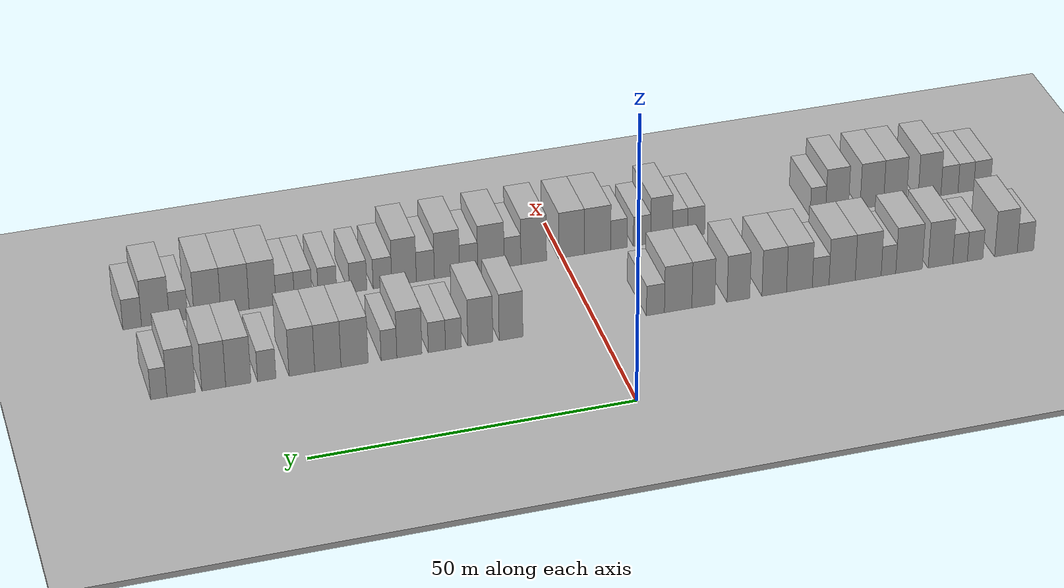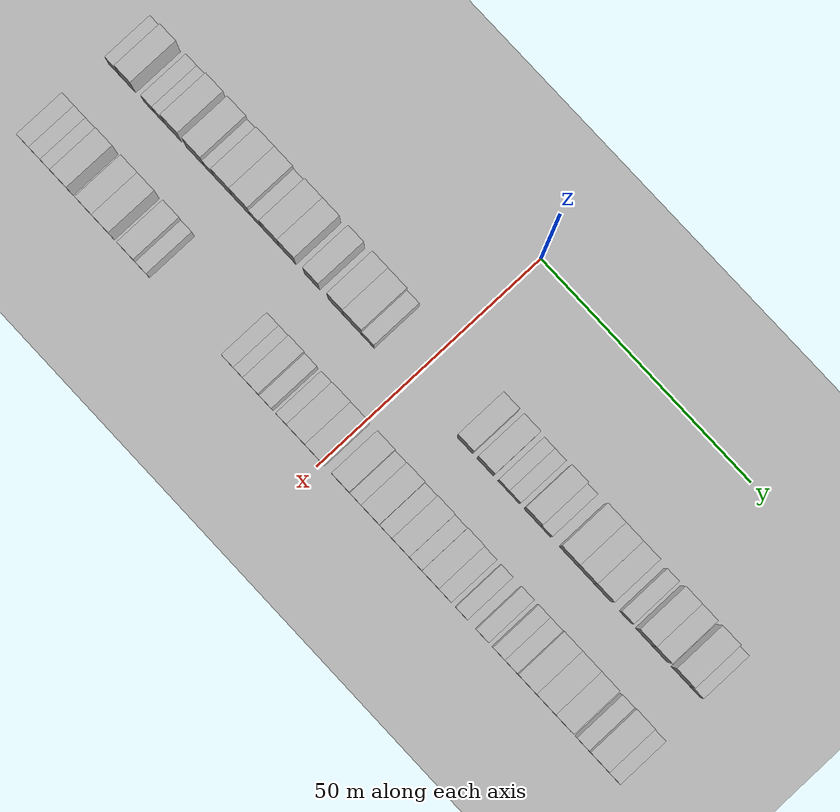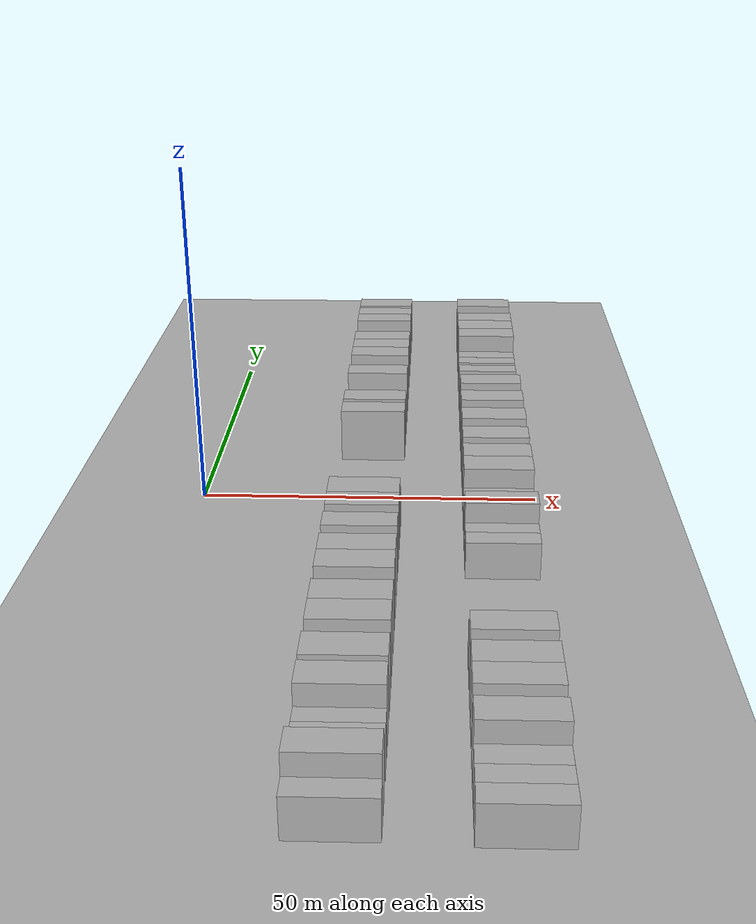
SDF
<sdf version="1.6">
 <world name="default">
  <include><name>ground_plane_1</name><uri>model://HANNAS_ground_plane</uri></include>
  <include>
   <name>ground_plane_2</name>
   <uri>model://HANNAS_ground_plane</uri>
   <pose>100 0 0  0 0 0</pose>
  </include>
  <model name="building_31">
   <static>1</static>
   <pose>25.0000 -70.6167 0 0.000000 0.000000 0.000000</pose>
   <link name="link">
    <pose>0 0 3.00 0 0 0</pose>
    <collision name="collision"><geometry><box><size>10.0000 2.8060 6.0000</size></box></geometry></collision>
    <visual name="visual">
     <cast_shadows>0</cast_shadows>
     <geometry><box><size>10.0000 2.8060 6.0000</size></box></geometry>
     <material>
      <script>
       <uri>model://HANNAS_wall/materials/scripts</uri>
       <uri>model://HANNAS_wall/materials/textures</uri>
       <name>vrc/HANNAS_wall</name>
      </script>
     </material>
    </visual>
   </link>
  </model>
  <model name="building_32">
   <static>1</static>
   <pose>25.0000 -67.3037 0 0.000000 0.000000 0.000000</pose>
   <link name="link">
    <pose>0 0 4.50 0 0 0</pose>
    <collision name="collision"><geometry><box><size>10.0000 3.8201 9.0000</size></box></geometry></collision>
    <visual name="visual">
     <cast_shadows>0</cast_shadows>
     <geometry><box><size>10.0000 3.8201 9.0000</size></box></geometry>
     <material>
      <script>
       <uri>model://HANNAS_wall/materials/scripts</uri>
       <uri>model://HANNAS_wall/materials/textures</uri>
       <name>vrc/HANNAS_wall</name>
      </script>
     </material>
    </visual>
   </link>
  </model>
  <model name="building_33">
   <static>1</static>
   <pose>25.0000 -62.0734 0 0.000000 0.000000 0.000000</pose>
   <link name="link">
    <pose>0 0 3.00 0 0 0</pose>
    <collision name="collision"><geometry><box><size>10.0000 2.6405 6.0000</size></box></geometry></collision>
    <visual name="visual">
     <cast_shadows>0</cast_shadows>
     <geometry><box><size>10.0000 2.6405 6.0000</size></box></geometry>
     <material>
      <script>
       <uri>model://HANNAS_wall/materials/scripts</uri>
       <uri>model://HANNAS_wall/materials/textures</uri>
       <name>vrc/HANNAS_wall</name>
      </script>
     </material>
    </visual>
   </link>
  </model>
  <model name="building_34">
   <static>1</static>
   <pose>25.0000 -59.5268 0 0.000000 0.000000 0.000000</pose>
   <link name="link">
    <pose>0 0 3.00 0 0 0</pose>
    <collision name="collision"><geometry><box><size>10.0000 2.4527 6.0000</size></box></geometry></collision>
    <visual name="visual">
     <cast_shadows>0</cast_shadows>
     <geometry><box><size>10.0000 2.4527 6.0000</size></box></geometry>
     <material>
      <script>
       <uri>model://HANNAS_wall/materials/scripts</uri>
       <uri>model://HANNAS_wall/materials/textures</uri>
       <name>vrc/HANNAS_wall</name>
      </script>
     </material>
    </visual>
   </link>
  </model>
  <model name="building_35">
   <static>1</static>
   <pose>25.0000 -56.2302 0 0.000000 0.000000 0.000000</pose>
   <link name="link">
    <pose>0 0 4.50 0 0 0</pose>
    <collision name="collision"><geometry><box><size>10.0000 4.1403 9.0000</size></box></geometry></collision>
    <visual name="visual">
     <cast_shadows>0</cast_shadows>
     <geometry><box><size>10.0000 4.1403 9.0000</size></box></geometry>
     <material>
      <script>
       <uri>model://HANNAS_wall/materials/scripts</uri>
       <uri>model://HANNAS_wall/materials/textures</uri>
       <name>vrc/HANNAS_wall</name>
      </script>
     </material>
    </visual>
   </link>
  </model>
  <model name="building_36">
   <static>1</static>
   <pose>25.0000 -50.9407 0 0.000000 0.000000 0.000000</pose>
   <link name="link">
    <pose>0 0 4.50 0 0 0</pose>
    <collision name="collision"><geometry><box><size>10.0000 4.4387 9.0000</size></box></geometry></collision>
    <visual name="visual">
     <cast_shadows>0</cast_shadows>
     <geometry><box><size>10.0000 4.4387 9.0000</size></box></geometry>
     <material>
      <script>
       <uri>model://HANNAS_wall/materials/scripts</uri>
       <uri>model://HANNAS_wall/materials/textures</uri>
       <name>vrc/HANNAS_wall</name>
      </script>
     </material>
    </visual>
   </link>
  </model>
  <model name="building_37">
   <static>1</static>
   <pose>25.0000 -47.5016 0 0.000000 0.000000 0.000000</pose>
   <link name="link">
    <pose>0 0 3.00 0 0 0</pose>
    <collision name="collision"><geometry><box><size>10.0000 2.4396 6.0000</size></box></geometry></collision>
    <visual name="visual">
     <cast_shadows>0</cast_shadows>
     <geometry><box><size>10.0000 2.4396 6.0000</size></box></geometry>
     <material>
      <script>
       <uri>model://HANNAS_wall/materials/scripts</uri>
       <uri>model://HANNAS_wall/materials/textures</uri>
       <name>vrc/HANNAS_wall</name>
      </script>
     </material>
    </visual>
   </link>
  </model>
  <model name="building_38">
   <static>1</static>
   <pose>25.0000 -44.1194 0 0.000000 0.000000 0.000000</pose>
   <link name="link">
    <pose>0 0 4.50 0 0 0</pose>
    <collision name="collision"><geometry><box><size>10.0000 4.3247 9.0000</size></box></geometry></collision>
    <visual name="visual">
     <cast_shadows>0</cast_shadows>
     <geometry><box><size>10.0000 4.3247 9.0000</size></box></geometry>
     <material>
      <script>
       <uri>model://HANNAS_wall/materials/scripts</uri>
       <uri>model://HANNAS_wall/materials/textures</uri>
       <name>vrc/HANNAS_wall</name>
      </script>
     </material>
    </visual>
   </link>
  </model>
  <model name="building_39">
   <static>1</static>
   <pose>25.0000 -39.7856 0 0.000000 0.000000 0.000000</pose>
   <link name="link">
    <pose>0 0 4.50 0 0 0</pose>
    <collision name="collision"><geometry><box><size>10.0000 4.3429 9.0000</size></box></geometry></collision>
    <visual name="visual">
     <cast_shadows>0</cast_shadows>
     <geometry><box><size>10.0000 4.3429 9.0000</size></box></geometry>
     <material>
      <script>
       <uri>model://HANNAS_wall/materials/scripts</uri>
       <uri>model://HANNAS_wall/materials/textures</uri>
       <name>vrc/HANNAS_wall</name>
      </script>
     </material>
    </visual>
   </link>
  </model>
  <model name="building_40">
   <static>1</static>
   <pose>25.0000 -36.2304 0 0.000000 0.000000 0.000000</pose>
   <link name="link">
    <pose>0 0 3.00 0 0 0</pose>
    <collision name="collision"><geometry><box><size>10.0000 2.7675 6.0000</size></box></geometry></collision>
    <visual name="visual">
     <cast_shadows>0</cast_shadows>
     <geometry><box><size>10.0000 2.7675 6.0000</size></box></geometry>
     <material>
      <script>
       <uri>model://HANNAS_wall/materials/scripts</uri>
       <uri>model://HANNAS_wall/materials/textures</uri>
       <name>vrc/HANNAS_wall</name>
      </script>
     </material>
    </visual>
   </link>
  </model>
  <model name="building_41">
   <static>1</static>
   <pose>25.0000 -32.7204 0 0.000000 0.000000 0.000000</pose>
   <link name="link">
    <pose>0 0 4.50 0 0 0</pose>
    <collision name="collision"><geometry><box><size>10.0000 4.2525 9.0000</size></box></geometry></collision>
    <visual name="visual">
     <cast_shadows>0</cast_shadows>
     <geometry><box><size>10.0000 4.2525 9.0000</size></box></geometry>
     <material>
      <script>
       <uri>model://HANNAS_wall/materials/scripts</uri>
       <uri>model://HANNAS_wall/materials/textures</uri>
       <name>vrc/HANNAS_wall</name>
      </script>
     </material>
    </visual>
   </link>
  </model>
  <model name="building_42">
   <static>1</static>
   <pose>25.0000 -28.5766 0 0.000000 0.000000 0.000000</pose>
   <link name="link">
    <pose>0 0 4.50 0 0 0</pose>
    <collision name="collision"><geometry><box><size>10.0000 4.0351 9.0000</size></box></geometry></collision>
    <visual name="visual">
     <cast_shadows>0</cast_shadows>
     <geometry><box><size>10.0000 4.0351 9.0000</size></box></geometry>
     <material>
      <script>
       <uri>model://HANNAS_wall/materials/scripts</uri>
       <uri>model://HANNAS_wall/materials/textures</uri>
       <name>vrc/HANNAS_wall</name>
      </script>
     </material>
    </visual>
   </link>
  </model>
  <model name="building_43">
   <static>1</static>
   <pose>25.0000 -22.7029 0 0.000000 0.000000 0.000000</pose>
   <link name="link">
    <pose>0 0 4.50 0 0 0</pose>
    <collision name="collision"><geometry><box><size>10.0000 3.7123 9.0000</size></box></geometry></collision>
    <visual name="visual">
     <cast_shadows>0</cast_shadows>
     <geometry><box><size>10.0000 3.7123 9.0000</size></box></geometry>
     <material>
      <script>
       <uri>model://HANNAS_wall/materials/scripts</uri>
       <uri>model://HANNAS_wall/materials/textures</uri>
       <name>vrc/HANNAS_wall</name>
      </script>
     </material>
    </visual>
   </link>
  </model>
  <model name="building_44">
   <static>1</static>
   <pose>25.0000 -16.9877 0 0.000000 0.000000 0.000000</pose>
   <link name="link">
    <pose>0 0 4.50 0 0 0</pose>
    <collision name="collision"><geometry><box><size>10.0000 3.7183 9.0000</size></box></geometry></collision>
    <visual name="visual">
     <cast_shadows>0</cast_shadows>
     <geometry><box><size>10.0000 3.7183 9.0000</size></box></geometry>
     <material>
      <script>
       <uri>model://HANNAS_wall/materials/scripts</uri>
       <uri>model://HANNAS_wall/materials/textures</uri>
       <name>vrc/HANNAS_wall</name>
      </script>
     </material>
    </visual>
   </link>
  </model>
  <model name="building_45">
   <static>1</static>
   <pose>25.0000 -12.9024 0 0.000000 0.000000 0.000000</pose>
   <link name="link">
    <pose>0 0 4.50 0 0 0</pose>
    <collision name="collision"><geometry><box><size>10.0000 4.4522 9.0000</size></box></geometry></collision>
    <visual name="visual">
     <cast_shadows>0</cast_shadows>
     <geometry><box><size>10.0000 4.4522 9.0000</size></box></geometry>
     <material>
      <script>
       <uri>model://HANNAS_wall/materials/scripts</uri>
       <uri>model://HANNAS_wall/materials/textures</uri>
       <name>vrc/HANNAS_wall</name>
      </script>
     </material>
    </visual>
   </link>
  </model>
  <model name="building_46">
   <static>1</static>
   <pose>25.0000 -9.2257 0 0.000000 0.000000 0.000000</pose>
   <link name="link">
    <pose>0 0 3.00 0 0 0</pose>
    <collision name="collision"><geometry><box><size>10.0000 2.9012 6.0000</size></box></geometry></collision>
    <visual name="visual">
     <cast_shadows>0</cast_shadows>
     <geometry><box><size>10.0000 2.9012 6.0000</size></box></geometry>
     <material>
      <script>
       <uri>model://HANNAS_wall/materials/scripts</uri>
       <uri>model://HANNAS_wall/materials/textures</uri>
       <name>vrc/HANNAS_wall</name>
      </script>
     </material>
    </visual>
   </link>
  </model>
  <model name="building_47">
   <static>1</static>
   <pose>25.0000 13.8577 0 0.000000 0.000000 0.000000</pose>
   <link name="link">
    <pose>0 0 4.50 0 0 0</pose>
    <collision name="collision"><geometry><box><size>10.0000 3.7552 9.0000</size></box></geometry></collision>
    <visual name="visual">
     <cast_shadows>0</cast_shadows>
     <geometry><box><size>10.0000 3.7552 9.0000</size></box></geometry>
     <material>
      <script>
       <uri>model://HANNAS_wall/materials/scripts</uri>
       <uri>model://HANNAS_wall/materials/textures</uri>
       <name>vrc/HANNAS_wall</name>
      </script>
     </material>
    </visual>
   </link>
  </model>
  <model name="building_48">
   <static>1</static>
   <pose>25.0000 18.7041 0 0.000000 0.000000 0.000000</pose>
   <link name="link">
    <pose>0 0 4.50 0 0 0</pose>
    <collision name="collision"><geometry><box><size>10.0000 3.9375 9.0000</size></box></geometry></collision>
    <visual name="visual">
     <cast_shadows>0</cast_shadows>
     <geometry><box><size>10.0000 3.9375 9.0000</size></box></geometry>
     <material>
      <script>
       <uri>model://HANNAS_wall/materials/scripts</uri>
       <uri>model://HANNAS_wall/materials/textures</uri>
       <name>vrc/HANNAS_wall</name>
      </script>
     </material>
    </visual>
   </link>
  </model>
  <model name="building_49">
   <static>1</static>
   <pose>25.0000 22.9272 0 0.000000 0.000000 0.000000</pose>
   <link name="link">
    <pose>0 0 3.00 0 0 0</pose>
    <collision name="collision"><geometry><box><size>10.0000 2.5087 6.0000</size></box></geometry></collision>
    <visual name="visual">
     <cast_shadows>0</cast_shadows>
     <geometry><box><size>10.0000 2.5087 6.0000</size></box></geometry>
     <material>
      <script>
       <uri>model://HANNAS_wall/materials/scripts</uri>
       <uri>model://HANNAS_wall/materials/textures</uri>
       <name>vrc/HANNAS_wall</name>
      </script>
     </material>
    </visual>
   </link>
  </model>
  <model name="building_50">
   <static>1</static>
   <pose>25.0000 25.5228 0 0.000000 0.000000 0.000000</pose>
   <link name="link">
    <pose>0 0 3.00 0 0 0</pose>
    <collision name="collision"><geometry><box><size>10.0000 2.6825 6.0000</size></box></geometry></collision>
    <visual name="visual">
     <cast_shadows>0</cast_shadows>
     <geometry><box><size>10.0000 2.6825 6.0000</size></box></geometry>
     <material>
      <script>
       <uri>model://HANNAS_wall/materials/scripts</uri>
       <uri>model://HANNAS_wall/materials/textures</uri>
       <name>vrc/HANNAS_wall</name>
      </script>
     </material>
    </visual>
   </link>
  </model>
  <model name="building_51">
   <static>1</static>
   <pose>25.0000 29.8135 0 0.000000 0.000000 0.000000</pose>
   <link name="link">
    <pose>0 0 4.50 0 0 0</pose>
    <collision name="collision"><geometry><box><size>10.0000 3.8990 9.0000</size></box></geometry></collision>
    <visual name="visual">
     <cast_shadows>0</cast_shadows>
     <geometry><box><size>10.0000 3.8990 9.0000</size></box></geometry>
     <material>
      <script>
       <uri>model://HANNAS_wall/materials/scripts</uri>
       <uri>model://HANNAS_wall/materials/textures</uri>
       <name>vrc/HANNAS_wall</name>
      </script>
     </material>
    </visual>
   </link>
  </model>
  <model name="building_52">
   <static>1</static>
   <pose>25.0000 32.9912 0 0.000000 0.000000 0.000000</pose>
   <link name="link">
    <pose>0 0 3.00 0 0 0</pose>
    <collision name="collision"><geometry><box><size>10.0000 2.4564 6.0000</size></box></geometry></collision>
    <visual name="visual">
     <cast_shadows>0</cast_shadows>
     <geometry><box><size>10.0000 2.4564 6.0000</size></box></geometry>
     <material>
      <script>
       <uri>model://HANNAS_wall/materials/scripts</uri>
       <uri>model://HANNAS_wall/materials/textures</uri>
       <name>vrc/HANNAS_wall</name>
      </script>
     </material>
    </visual>
   </link>
  </model>
  <model name="building_53">
   <static>1</static>
   <pose>25.0000 38.3238 0 0.000000 0.000000 0.000000</pose>
   <link name="link">
    <pose>0 0 4.50 0 0 0</pose>
    <collision name="collision"><geometry><box><size>10.0000 4.2088 9.0000</size></box></geometry></collision>
    <visual name="visual">
     <cast_shadows>0</cast_shadows>
     <geometry><box><size>10.0000 4.2088 9.0000</size></box></geometry>
     <material>
      <script>
       <uri>model://HANNAS_wall/materials/scripts</uri>
       <uri>model://HANNAS_wall/materials/textures</uri>
       <name>vrc/HANNAS_wall</name>
      </script>
     </material>
    </visual>
   </link>
  </model>
  <model name="building_54">
   <static>1</static>
   <pose>25.0000 42.4502 0 0.000000 0.000000 0.000000</pose>
   <link name="link">
    <pose>0 0 4.50 0 0 0</pose>
    <collision name="collision"><geometry><box><size>10.0000 4.0441 9.0000</size></box></geometry></collision>
    <visual name="visual">
     <cast_shadows>0</cast_shadows>
     <geometry><box><size>10.0000 4.0441 9.0000</size></box></geometry>
     <material>
      <script>
       <uri>model://HANNAS_wall/materials/scripts</uri>
       <uri>model://HANNAS_wall/materials/textures</uri>
       <name>vrc/HANNAS_wall</name>
      </script>
     </material>
    </visual>
   </link>
  </model>
  <model name="building_55">
   <static>1</static>
   <pose>25.0000 46.4482 0 0.000000 0.000000 0.000000</pose>
   <link name="link">
    <pose>0 0 4.50 0 0 0</pose>
    <collision name="collision"><geometry><box><size>10.0000 3.9518 9.0000</size></box></geometry></collision>
    <visual name="visual">
     <cast_shadows>0</cast_shadows>
     <geometry><box><size>10.0000 3.9518 9.0000</size></box></geometry>
     <material>
      <script>
       <uri>model://HANNAS_wall/materials/scripts</uri>
       <uri>model://HANNAS_wall/materials/textures</uri>
       <name>vrc/HANNAS_wall</name>
      </script>
     </material>
    </visual>
   </link>
  </model>
  <model name="building_56">
   <static>1</static>
   <pose>25.0000 51.8297 0 0.000000 0.000000 0.000000</pose>
   <link name="link">
    <pose>0 0 3.00 0 0 0</pose>
    <collision name="collision"><geometry><box><size>10.0000 2.8113 6.0000</size></box></geometry></collision>
    <visual name="visual">
     <cast_shadows>0</cast_shadows>
     <geometry><box><size>10.0000 2.8113 6.0000</size></box></geometry>
     <material>
      <script>
       <uri>model://HANNAS_wall/materials/scripts</uri>
       <uri>model://HANNAS_wall/materials/textures</uri>
       <name>vrc/HANNAS_wall</name>
      </script>
     </material>
    </visual>
   </link>
  </model>
  <model name="building_57">
   <static>1</static>
   <pose>25.0000 56.1530 0 0.000000 0.000000 0.000000</pose>
   <link name="link">
    <pose>0 0 4.50 0 0 0</pose>
    <collision name="collision"><geometry><box><size>10.0000 3.8352 9.0000</size></box></geometry></collision>
    <visual name="visual">
     <cast_shadows>0</cast_shadows>
     <geometry><box><size>10.0000 3.8352 9.0000</size></box></geometry>
     <material>
      <script>
       <uri>model://HANNAS_wall/materials/scripts</uri>
       <uri>model://HANNAS_wall/materials/textures</uri>
       <name>vrc/HANNAS_wall</name>
      </script>
     </material>
    </visual>
   </link>
  </model>
  <model name="building_58">
   <static>1</static>
   <pose>25.0000 59.8835 0 0.000000 0.000000 0.000000</pose>
   <link name="link">
    <pose>0 0 4.50 0 0 0</pose>
    <collision name="collision"><geometry><box><size>10.0000 3.6257 9.0000</size></box></geometry></collision>
    <visual name="visual">
     <cast_shadows>0</cast_shadows>
     <geometry><box><size>10.0000 3.6257 9.0000</size></box></geometry>
     <material>
      <script>
       <uri>model://HANNAS_wall/materials/scripts</uri>
       <uri>model://HANNAS_wall/materials/textures</uri>
       <name>vrc/HANNAS_wall</name>
      </script>
     </material>
    </visual>
   </link>
  </model>
  <model name="building_59">
   <static>1</static>
   <pose>25.0000 64.8296 0 0.000000 0.000000 0.000000</pose>
   <link name="link">
    <pose>0 0 4.50 0 0 0</pose>
    <collision name="collision"><geometry><box><size>10.0000 4.2667 9.0000</size></box></geometry></collision>
    <visual name="visual">
     <cast_shadows>0</cast_shadows>
     <geometry><box><size>10.0000 4.2667 9.0000</size></box></geometry>
     <material>
      <script>
       <uri>model://HANNAS_wall/materials/scripts</uri>
       <uri>model://HANNAS_wall/materials/textures</uri>
       <name>vrc/HANNAS_wall</name>
      </script>
     </material>
    </visual>
   </link>
  </model>
  <model name="building_60">
   <static>1</static>
   <pose>25.0000 68.1947 0 0.000000 0.000000 0.000000</pose>
   <link name="link">
    <pose>0 0 3.00 0 0 0</pose>
    <collision name="collision"><geometry><box><size>10.0000 2.4634 6.0000</size></box></geometry></collision>
    <visual name="visual">
     <cast_shadows>0</cast_shadows>
     <geometry><box><size>10.0000 2.4634 6.0000</size></box></geometry>
     <material>
      <script>
       <uri>model://HANNAS_wall/materials/scripts</uri>
       <uri>model://HANNAS_wall/materials/textures</uri>
       <name>vrc/HANNAS_wall</name>
      </script>
     </material>
    </visual>
   </link>
  </model>
  <model name="building_127">
   <static>1</static>
   <pose>44.0000 -70.9362 0 0.000000 0.000000 0.000000</pose>
   <link name="link">
    <pose>0 0 3.00 0 0 0</pose>
    <collision name="collision"><geometry><box><size>10.0000 2.9309 6.0000</size></box></geometry></collision>
    <visual name="visual">
     <cast_shadows>0</cast_shadows>
     <geometry><box><size>10.0000 2.9309 6.0000</size></box></geometry>
     <material>
      <script>
       <uri>model://HANNAS_wall/materials/scripts</uri>
       <uri>model://HANNAS_wall/materials/textures</uri>
       <name>vrc/HANNAS_wall</name>
      </script>
     </material>
    </visual>
   </link>
  </model>
  <model name="building_128">
   <static>1</static>
   <pose>44.0000 -68.1045 0 0.000000 0.000000 0.000000</pose>
   <link name="link">
    <pose>0 0 3.00 0 0 0</pose>
    <collision name="collision"><geometry><box><size>10.0000 2.7325 6.0000</size></box></geometry></collision>
    <visual name="visual">
     <cast_shadows>0</cast_shadows>
     <geometry><box><size>10.0000 2.7325 6.0000</size></box></geometry>
     <material>
      <script>
       <uri>model://HANNAS_wall/materials/scripts</uri>
       <uri>model://HANNAS_wall/materials/textures</uri>
       <name>vrc/HANNAS_wall</name>
      </script>
     </material>
    </visual>
   </link>
  </model>
  <model name="building_129">
   <static>1</static>
   <pose>44.0000 -65.2510 0 0.000000 0.000000 0.000000</pose>
   <link name="link">
    <pose>0 0 3.00 0 0 0</pose>
    <collision name="collision"><geometry><box><size>10.0000 2.9744 6.0000</size></box></geometry></collision>
    <visual name="visual">
     <cast_shadows>0</cast_shadows>
     <geometry><box><size>10.0000 2.9744 6.0000</size></box></geometry>
     <material>
      <script>
       <uri>model://HANNAS_wall/materials/scripts</uri>
       <uri>model://HANNAS_wall/materials/textures</uri>
       <name>vrc/HANNAS_wall</name>
      </script>
     </material>
    </visual>
   </link>
  </model>
  <model name="building_130">
   <static>1</static>
   <pose>44.0000 -61.7847 0 0.000000 0.000000 0.000000</pose>
   <link name="link">
    <pose>0 0 4.50 0 0 0</pose>
    <collision name="collision"><geometry><box><size>10.0000 3.9584 9.0000</size></box></geometry></collision>
    <visual name="visual">
     <cast_shadows>0</cast_shadows>
     <geometry><box><size>10.0000 3.9584 9.0000</size></box></geometry>
     <material>
      <script>
       <uri>model://HANNAS_wall/materials/scripts</uri>
       <uri>model://HANNAS_wall/materials/textures</uri>
       <name>vrc/HANNAS_wall</name>
      </script>
     </material>
    </visual>
   </link>
  </model>
  <model name="building_131">
   <static>1</static>
   <pose>44.0000 -55.8236 0 0.000000 0.000000 0.000000</pose>
   <link name="link">
    <pose>0 0 4.50 0 0 0</pose>
    <collision name="collision"><geometry><box><size>10.0000 3.9638 9.0000</size></box></geometry></collision>
    <visual name="visual">
     <cast_shadows>0</cast_shadows>
     <geometry><box><size>10.0000 3.9638 9.0000</size></box></geometry>
     <material>
      <script>
       <uri>model://HANNAS_wall/materials/scripts</uri>
       <uri>model://HANNAS_wall/materials/textures</uri>
       <name>vrc/HANNAS_wall</name>
      </script>
     </material>
    </visual>
   </link>
  </model>
  <model name="building_132">
   <static>1</static>
   <pose>44.0000 -51.8228 0 0.000000 0.000000 0.000000</pose>
   <link name="link">
    <pose>0 0 4.50 0 0 0</pose>
    <collision name="collision"><geometry><box><size>10.0000 4.0378 9.0000</size></box></geometry></collision>
    <visual name="visual">
     <cast_shadows>0</cast_shadows>
     <geometry><box><size>10.0000 4.0378 9.0000</size></box></geometry>
     <material>
      <script>
       <uri>model://HANNAS_wall/materials/scripts</uri>
       <uri>model://HANNAS_wall/materials/textures</uri>
       <name>vrc/HANNAS_wall</name>
      </script>
     </material>
    </visual>
   </link>
  </model>
  <model name="building_133">
   <static>1</static>
   <pose>44.0000 -45.8541 0 0.000000 0.000000 0.000000</pose>
   <link name="link">
    <pose>0 0 4.50 0 0 0</pose>
    <collision name="collision"><geometry><box><size>10.0000 3.8995 9.0000</size></box></geometry></collision>
    <visual name="visual">
     <cast_shadows>0</cast_shadows>
     <geometry><box><size>10.0000 3.8995 9.0000</size></box></geometry>
     <material>
      <script>
       <uri>model://HANNAS_wall/materials/scripts</uri>
       <uri>model://HANNAS_wall/materials/textures</uri>
       <name>vrc/HANNAS_wall</name>
      </script>
     </material>
    </visual>
   </link>
  </model>
  <model name="building_134">
   <static>1</static>
   <pose>44.0000 -42.5927 0 0.000000 0.000000 0.000000</pose>
   <link name="link">
    <pose>0 0 3.00 0 0 0</pose>
    <collision name="collision"><geometry><box><size>10.0000 2.6233 6.0000</size></box></geometry></collision>
    <visual name="visual">
     <cast_shadows>0</cast_shadows>
     <geometry><box><size>10.0000 2.6233 6.0000</size></box></geometry>
     <material>
      <script>
       <uri>model://HANNAS_wall/materials/scripts</uri>
       <uri>model://HANNAS_wall/materials/textures</uri>
       <name>vrc/HANNAS_wall</name>
      </script>
     </material>
    </visual>
   </link>
  </model>
  <model name="building_135">
   <static>1</static>
   <pose>44.0000 -22.0076 0 0.000000 0.000000 0.000000</pose>
   <link name="link">
    <pose>0 0 3.00 0 0 0</pose>
    <collision name="collision"><geometry><box><size>10.0000 2.8490 6.0000</size></box></geometry></collision>
    <visual name="visual">
     <cast_shadows>0</cast_shadows>
     <geometry><box><size>10.0000 2.8490 6.0000</size></box></geometry>
     <material>
      <script>
       <uri>model://HANNAS_wall/materials/scripts</uri>
       <uri>model://HANNAS_wall/materials/textures</uri>
       <name>vrc/HANNAS_wall</name>
      </script>
     </material>
    </visual>
   </link>
  </model>
  <model name="building_136">
   <static>1</static>
   <pose>44.0000 -19.3084 0 0.000000 0.000000 0.000000</pose>
   <link name="link">
    <pose>0 0 3.00 0 0 0</pose>
    <collision name="collision"><geometry><box><size>10.0000 2.5492 6.0000</size></box></geometry></collision>
    <visual name="visual">
     <cast_shadows>0</cast_shadows>
     <geometry><box><size>10.0000 2.5492 6.0000</size></box></geometry>
     <material>
      <script>
       <uri>model://HANNAS_wall/materials/scripts</uri>
       <uri>model://HANNAS_wall/materials/textures</uri>
       <name>vrc/HANNAS_wall</name>
      </script>
     </material>
    </visual>
   </link>
  </model>
  <model name="building_137">
   <static>1</static>
   <pose>44.0000 -16.2273 0 0.000000 0.000000 0.000000</pose>
   <link name="link">
    <pose>0 0 4.50 0 0 0</pose>
    <collision name="collision"><geometry><box><size>10.0000 3.6131 9.0000</size></box></geometry></collision>
    <visual name="visual">
     <cast_shadows>0</cast_shadows>
     <geometry><box><size>10.0000 3.6131 9.0000</size></box></geometry>
     <material>
      <script>
       <uri>model://HANNAS_wall/materials/scripts</uri>
       <uri>model://HANNAS_wall/materials/textures</uri>
       <name>vrc/HANNAS_wall</name>
      </script>
     </material>
    </visual>
   </link>
  </model>
  <model name="building_138">
   <static>1</static>
   <pose>44.0000 -12.9741 0 0.000000 0.000000 0.000000</pose>
   <link name="link">
    <pose>0 0 3.00 0 0 0</pose>
    <collision name="collision"><geometry><box><size>10.0000 2.8932 6.0000</size></box></geometry></collision>
    <visual name="visual">
     <cast_shadows>0</cast_shadows>
     <geometry><box><size>10.0000 2.8932 6.0000</size></box></geometry>
     <material>
      <script>
       <uri>model://HANNAS_wall/materials/scripts</uri>
       <uri>model://HANNAS_wall/materials/textures</uri>
       <name>vrc/HANNAS_wall</name>
      </script>
     </material>
    </visual>
   </link>
  </model>
  <model name="building_139">
   <static>1</static>
   <pose>44.0000 -9.1654 0 0.000000 0.000000 0.000000</pose>
   <link name="link">
    <pose>0 0 3.00 0 0 0</pose>
    <collision name="collision"><geometry><box><size>10.0000 2.7242 6.0000</size></box></geometry></collision>
    <visual name="visual">
     <cast_shadows>0</cast_shadows>
     <geometry><box><size>10.0000 2.7242 6.0000</size></box></geometry>
     <material>
      <script>
       <uri>model://HANNAS_wall/materials/scripts</uri>
       <uri>model://HANNAS_wall/materials/textures</uri>
       <name>vrc/HANNAS_wall</name>
      </script>
     </material>
    </visual>
   </link>
  </model>
  <model name="building_140">
   <static>1</static>
   <pose>44.0000 -5.6246 0 0.000000 0.000000 0.000000</pose>
   <link name="link">
    <pose>0 0 4.50 0 0 0</pose>
    <collision name="collision"><geometry><box><size>10.0000 4.3575 9.0000</size></box></geometry></collision>
    <visual name="visual">
     <cast_shadows>0</cast_shadows>
     <geometry><box><size>10.0000 4.3575 9.0000</size></box></geometry>
     <material>
      <script>
       <uri>model://HANNAS_wall/materials/scripts</uri>
       <uri>model://HANNAS_wall/materials/textures</uri>
       <name>vrc/HANNAS_wall</name>
      </script>
     </material>
    </visual>
   </link>
  </model>
  <model name="building_141">
   <static>1</static>
   <pose>44.0000 -1.3273 0 0.000000 0.000000 0.000000</pose>
   <link name="link">
    <pose>0 0 4.50 0 0 0</pose>
    <collision name="collision"><geometry><box><size>10.0000 4.2371 9.0000</size></box></geometry></collision>
    <visual name="visual">
     <cast_shadows>0</cast_shadows>
     <geometry><box><size>10.0000 4.2371 9.0000</size></box></geometry>
     <material>
      <script>
       <uri>model://HANNAS_wall/materials/scripts</uri>
       <uri>model://HANNAS_wall/materials/textures</uri>
       <name>vrc/HANNAS_wall</name>
      </script>
     </material>
    </visual>
   </link>
  </model>
  <model name="building_142">
   <static>1</static>
   <pose>44.0000 4.8856 0 0.000000 0.000000 0.000000</pose>
   <link name="link">
    <pose>0 0 4.50 0 0 0</pose>
    <collision name="collision"><geometry><box><size>10.0000 4.1886 9.0000</size></box></geometry></collision>
    <visual name="visual">
     <cast_shadows>0</cast_shadows>
     <geometry><box><size>10.0000 4.1886 9.0000</size></box></geometry>
     <material>
      <script>
       <uri>model://HANNAS_wall/materials/scripts</uri>
       <uri>model://HANNAS_wall/materials/textures</uri>
       <name>vrc/HANNAS_wall</name>
      </script>
     </material>
    </visual>
   </link>
  </model>
  <model name="building_143">
   <static>1</static>
   <pose>44.0000 8.3517 0 0.000000 0.000000 0.000000</pose>
   <link name="link">
    <pose>0 0 3.00 0 0 0</pose>
    <collision name="collision"><geometry><box><size>10.0000 2.7436 6.0000</size></box></geometry></collision>
    <visual name="visual">
     <cast_shadows>0</cast_shadows>
     <geometry><box><size>10.0000 2.7436 6.0000</size></box></geometry>
     <material>
      <script>
       <uri>model://HANNAS_wall/materials/scripts</uri>
       <uri>model://HANNAS_wall/materials/textures</uri>
       <name>vrc/HANNAS_wall</name>
      </script>
     </material>
    </visual>
   </link>
  </model>
  <model name="building_144">
   <static>1</static>
   <pose>44.0000 11.8653 0 0.000000 0.000000 0.000000</pose>
   <link name="link">
    <pose>0 0 4.50 0 0 0</pose>
    <collision name="collision"><geometry><box><size>10.0000 4.2836 9.0000</size></box></geometry></collision>
    <visual name="visual">
     <cast_shadows>0</cast_shadows>
     <geometry><box><size>10.0000 4.2836 9.0000</size></box></geometry>
     <material>
      <script>
       <uri>model://HANNAS_wall/materials/scripts</uri>
       <uri>model://HANNAS_wall/materials/textures</uri>
       <name>vrc/HANNAS_wall</name>
      </script>
     </material>
    </visual>
   </link>
  </model>
  <model name="building_145">
   <static>1</static>
   <pose>44.0000 15.4812 0 0.000000 0.000000 0.000000</pose>
   <link name="link">
    <pose>0 0 3.00 0 0 0</pose>
    <collision name="collision"><geometry><box><size>10.0000 2.9484 6.0000</size></box></geometry></collision>
    <visual name="visual">
     <cast_shadows>0</cast_shadows>
     <geometry><box><size>10.0000 2.9484 6.0000</size></box></geometry>
     <material>
      <script>
       <uri>model://HANNAS_wall/materials/scripts</uri>
       <uri>model://HANNAS_wall/materials/textures</uri>
       <name>vrc/HANNAS_wall</name>
      </script>
     </material>
    </visual>
   </link>
  </model>
  <model name="building_146">
   <static>1</static>
   <pose>44.0000 18.9892 0 0.000000 0.000000 0.000000</pose>
   <link name="link">
    <pose>0 0 4.50 0 0 0</pose>
    <collision name="collision"><geometry><box><size>10.0000 4.0675 9.0000</size></box></geometry></collision>
    <visual name="visual">
     <cast_shadows>0</cast_shadows>
     <geometry><box><size>10.0000 4.0675 9.0000</size></box></geometry>
     <material>
      <script>
       <uri>model://HANNAS_wall/materials/scripts</uri>
       <uri>model://HANNAS_wall/materials/textures</uri>
       <name>vrc/HANNAS_wall</name>
      </script>
     </material>
    </visual>
   </link>
  </model>
  <model name="building_147">
   <static>1</static>
   <pose>44.0000 22.4830 0 0.000000 0.000000 0.000000</pose>
   <link name="link">
    <pose>0 0 3.00 0 0 0</pose>
    <collision name="collision"><geometry><box><size>10.0000 2.9203 6.0000</size></box></geometry></collision>
    <visual name="visual">
     <cast_shadows>0</cast_shadows>
     <geometry><box><size>10.0000 2.9203 6.0000</size></box></geometry>
     <material>
      <script>
       <uri>model://HANNAS_wall/materials/scripts</uri>
       <uri>model://HANNAS_wall/materials/textures</uri>
       <name>vrc/HANNAS_wall</name>
      </script>
     </material>
    </visual>
   </link>
  </model>
  <model name="building_148">
   <static>1</static>
   <pose>44.0000 25.9090 0 0.000000 0.000000 0.000000</pose>
   <link name="link">
    <pose>0 0 4.50 0 0 0</pose>
    <collision name="collision"><geometry><box><size>10.0000 3.9318 9.0000</size></box></geometry></collision>
    <visual name="visual">
     <cast_shadows>0</cast_shadows>
     <geometry><box><size>10.0000 3.9318 9.0000</size></box></geometry>
     <material>
      <script>
       <uri>model://HANNAS_wall/materials/scripts</uri>
       <uri>model://HANNAS_wall/materials/textures</uri>
       <name>vrc/HANNAS_wall</name>
      </script>
     </material>
    </visual>
   </link>
  </model>
  <model name="building_149">
   <static>1</static>
   <pose>44.0000 29.3743 0 0.000000 0.000000 0.000000</pose>
   <link name="link">
    <pose>0 0 3.00 0 0 0</pose>
    <collision name="collision"><geometry><box><size>10.0000 2.9987 6.0000</size></box></geometry></collision>
    <visual name="visual">
     <cast_shadows>0</cast_shadows>
     <geometry><box><size>10.0000 2.9987 6.0000</size></box></geometry>
     <material>
      <script>
       <uri>model://HANNAS_wall/materials/scripts</uri>
       <uri>model://HANNAS_wall/materials/textures</uri>
       <name>vrc/HANNAS_wall</name>
      </script>
     </material>
    </visual>
   </link>
  </model>
  <model name="building_150">
   <static>1</static>
   <pose>44.0000 33.2702 0 0.000000 0.000000 0.000000</pose>
   <link name="link">
    <pose>0 0 3.00 0 0 0</pose>
    <collision name="collision"><geometry><box><size>10.0000 2.7932 6.0000</size></box></geometry></collision>
    <visual name="visual">
     <cast_shadows>0</cast_shadows>
     <geometry><box><size>10.0000 2.7932 6.0000</size></box></geometry>
     <material>
      <script>
       <uri>model://HANNAS_wall/materials/scripts</uri>
       <uri>model://HANNAS_wall/materials/textures</uri>
       <name>vrc/HANNAS_wall</name>
      </script>
     </material>
    </visual>
   </link>
  </model>
  <model name="building_151">
   <static>1</static>
   <pose>44.0000 38.1414 0 0.000000 0.000000 0.000000</pose>
   <link name="link">
    <pose>0 0 3.00 0 0 0</pose>
    <collision name="collision"><geometry><box><size>10.0000 2.9492 6.0000</size></box></geometry></collision>
    <visual name="visual">
     <cast_shadows>0</cast_shadows>
     <geometry><box><size>10.0000 2.9492 6.0000</size></box></geometry>
     <material>
      <script>
       <uri>model://HANNAS_wall/materials/scripts</uri>
       <uri>model://HANNAS_wall/materials/textures</uri>
       <name>vrc/HANNAS_wall</name>
      </script>
     </material>
    </visual>
   </link>
  </model>
  <model name="building_152">
   <static>1</static>
   <pose>44.0000 42.0061 0 0.000000 0.000000 0.000000</pose>
   <link name="link">
    <pose>0 0 3.00 0 0 0</pose>
    <collision name="collision"><geometry><box><size>10.0000 2.7802 6.0000</size></box></geometry></collision>
    <visual name="visual">
     <cast_shadows>0</cast_shadows>
     <geometry><box><size>10.0000 2.7802 6.0000</size></box></geometry>
     <material>
      <script>
       <uri>model://HANNAS_wall/materials/scripts</uri>
       <uri>model://HANNAS_wall/materials/textures</uri>
       <name>vrc/HANNAS_wall</name>
      </script>
     </material>
    </visual>
   </link>
  </model>
  <model name="building_153">
   <static>1</static>
   <pose>44.0000 44.8582 0 0.000000 0.000000 0.000000</pose>
   <link name="link">
    <pose>0 0 3.00 0 0 0</pose>
    <collision name="collision"><geometry><box><size>10.0000 2.9241 6.0000</size></box></geometry></collision>
    <visual name="visual">
     <cast_shadows>0</cast_shadows>
     <geometry><box><size>10.0000 2.9241 6.0000</size></box></geometry>
     <material>
      <script>
       <uri>model://HANNAS_wall/materials/scripts</uri>
       <uri>model://HANNAS_wall/materials/textures</uri>
       <name>vrc/HANNAS_wall</name>
      </script>
     </material>
    </visual>
   </link>
  </model>
  <model name="building_154">
   <static>1</static>
   <pose>44.0000 48.4323 0 0.000000 0.000000 0.000000</pose>
   <link name="link">
    <pose>0 0 4.50 0 0 0</pose>
    <collision name="collision"><geometry><box><size>10.0000 4.2242 9.0000</size></box></geometry></collision>
    <visual name="visual">
     <cast_shadows>0</cast_shadows>
     <geometry><box><size>10.0000 4.2242 9.0000</size></box></geometry>
     <material>
      <script>
       <uri>model://HANNAS_wall/materials/scripts</uri>
       <uri>model://HANNAS_wall/materials/textures</uri>
       <name>vrc/HANNAS_wall</name>
      </script>
     </material>
    </visual>
   </link>
  </model>
  <model name="building_155">
   <static>1</static>
   <pose>44.0000 52.7566 0 0.000000 0.000000 0.000000</pose>
   <link name="link">
    <pose>0 0 4.50 0 0 0</pose>
    <collision name="collision"><geometry><box><size>10.0000 4.4244 9.0000</size></box></geometry></collision>
    <visual name="visual">
     <cast_shadows>0</cast_shadows>
     <geometry><box><size>10.0000 4.4244 9.0000</size></box></geometry>
     <material>
      <script>
       <uri>model://HANNAS_wall/materials/scripts</uri>
       <uri>model://HANNAS_wall/materials/textures</uri>
       <name>vrc/HANNAS_wall</name>
      </script>
     </material>
    </visual>
   </link>
  </model>
  <model name="building_156">
   <static>1</static>
   <pose>44.0000 57.0613 0 0.000000 0.000000 0.000000</pose>
   <link name="link">
    <pose>0 0 4.50 0 0 0</pose>
    <collision name="collision"><geometry><box><size>10.0000 4.1848 9.0000</size></box></geometry></collision>
    <visual name="visual">
     <cast_shadows>0</cast_shadows>
     <geometry><box><size>10.0000 4.1848 9.0000</size></box></geometry>
     <material>
      <script>
       <uri>model://HANNAS_wall/materials/scripts</uri>
       <uri>model://HANNAS_wall/materials/textures</uri>
       <name>vrc/HANNAS_wall</name>
      </script>
     </material>
    </visual>
   </link>
  </model>
  <model name="building_157">
   <static>1</static>
   <pose>44.0000 61.5804 0 0.000000 0.000000 0.000000</pose>
   <link name="link">
    <pose>0 0 3.00 0 0 0</pose>
    <collision name="collision"><geometry><box><size>10.0000 2.8534 6.0000</size></box></geometry></collision>
    <visual name="visual">
     <cast_shadows>0</cast_shadows>
     <geometry><box><size>10.0000 2.8534 6.0000</size></box></geometry>
     <material>
      <script>
       <uri>model://HANNAS_wall/materials/scripts</uri>
       <uri>model://HANNAS_wall/materials/textures</uri>
       <name>vrc/HANNAS_wall</name>
      </script>
     </material>
    </visual>
   </link>
  </model>
  <model name="building_158">
   <static>1</static>
   <pose>44.0000 65.1660 0 0.000000 0.000000 0.000000</pose>
   <link name="link">
    <pose>0 0 4.50 0 0 0</pose>
    <collision name="collision"><geometry><box><size>10.0000 4.3179 9.0000</size></box></geometry></collision>
    <visual name="visual">
     <cast_shadows>0</cast_shadows>
     <geometry><box><size>10.0000 4.3179 9.0000</size></box></geometry>
     <material>
      <script>
       <uri>model://HANNAS_wall/materials/scripts</uri>
       <uri>model://HANNAS_wall/materials/textures</uri>
       <name>vrc/HANNAS_wall</name>
      </script>
     </material>
    </visual>
   </link>
  </model>
  <model name="building_159">
   <static>1</static>
   <pose>44.0000 68.7745 0 0.000000 0.000000 0.000000</pose>
   <link name="link">
    <pose>0 0 3.00 0 0 0</pose>
    <collision name="collision"><geometry><box><size>10.0000 2.8990 6.0000</size></box></geometry></collision>
    <visual name="visual">
     <cast_shadows>0</cast_shadows>
     <geometry><box><size>10.0000 2.8990 6.0000</size></box></geometry>
     <material>
      <script>
       <uri>model://HANNAS_wall/materials/scripts</uri>
       <uri>model://HANNAS_wall/materials/textures</uri>
       <name>vrc/HANNAS_wall</name>
      </script>
     </material>
    </visual>
   </link>
  </model>
 </world>
</sdf>
